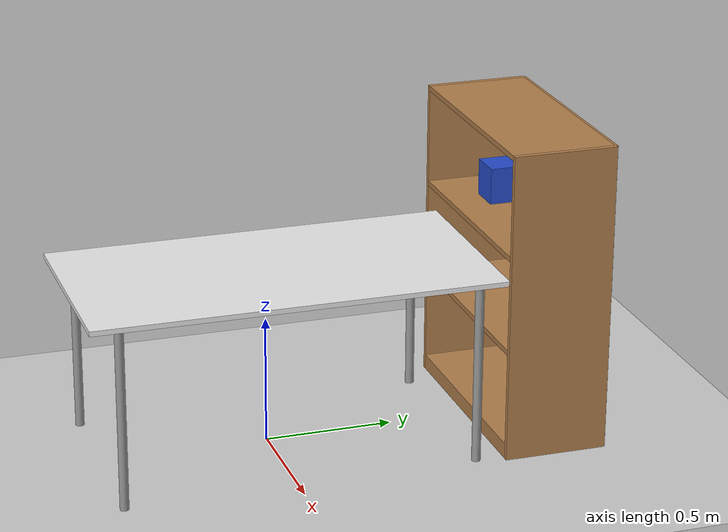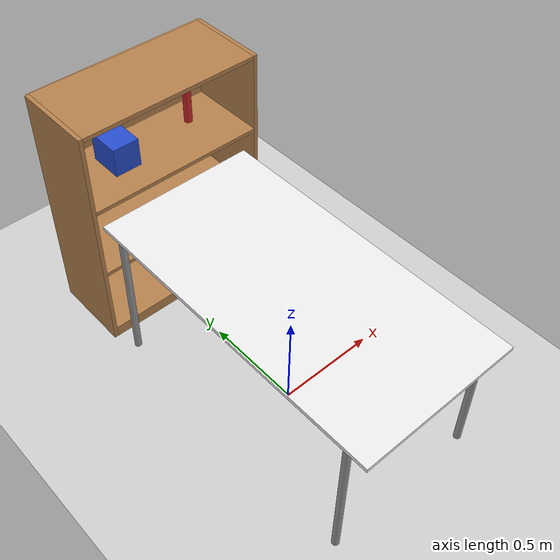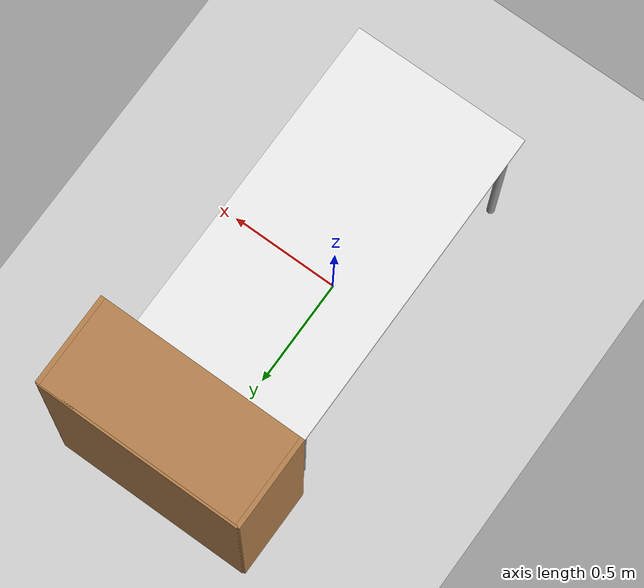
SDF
<sdf version="1.7">
 <world name="default">
  <plugin name="ros_link_attacher_plugin" filename="libgazebo_ros_link_attacher.so"/>
  <light name="sun" type="directional">
   <pose>0 0 10 0 -0 0</pose>
   <diffuse>0.8 0.8 0.8 1</diffuse>
   <specular>0.2 0.2 0.2 1</specular>
   <attenuation>
    <range>1000</range>
    <constant>0.9</constant>
    <linear>0.01</linear>
    <quadratic>0.001</quadratic>
   </attenuation>
   <direction>-0.5 0.1 -0.9</direction>
   <spot><inner_angle>0</inner_angle><outer_angle>0</outer_angle><falloff>0</falloff></spot>
  </light>
  <gravity>0 0 -9.8</gravity>
  <magnetic_field>6e-06 2.3e-05 -4.2e-05</magnetic_field>
  <atmosphere type="adiabatic"/>
  <physics type="ode">
   <max_step_size>0.001</max_step_size>
   <real_time_factor>1</real_time_factor>
   <real_time_update_rate>1000</real_time_update_rate>
  </physics>
  <scene><ambient>0.4 0.4 0.4 1</ambient><background>0.7 0.7 0.7 1</background><shadows>1</shadows></scene>
  <spherical_coordinates>
   <surface_model>EARTH_WGS84</surface_model>
   <latitude_deg>0</latitude_deg>
   <longitude_deg>0</longitude_deg>
   <elevation>0</elevation>
   <heading_deg>0</heading_deg>
  </spherical_coordinates>
  <model name="table2">
   <link name="link2">
    <inertial>
     <inertia><ixx>0</ixx><ixy>0</ixy><ixz>0</ixz><iyy>0</iyy><iyz>0</iyz><izz>0</izz></inertia>
     <mass>0</mass>
    </inertial>
    <pose>0.011874 -0.057526 0 0 -0 0</pose>
    <visual name="back_left_leg">
     <pose>-0.68 0.38 0.35 0 -0 0</pose>
     <geometry><cylinder><radius>0.017374</radius><length>0.7</length></cylinder></geometry>
     <material>
      <script><uri>file://media/materials/scripts/gazebo.material</uri><name>Gazebo/Grey</name></script>
      <shader type="pixel"><normal_map>__default__</normal_map></shader>
      <ambient>0.3 0.3 0.3 1</ambient>
      <diffuse>0.7 0.7 0.7 1</diffuse>
      <specular>0.01 0.01 0.01 1</specular>
      <emissive>0 0 0 1</emissive>
     </material>
    </visual>
    <visual name="visual1">
     <pose>0 0 0.71 0 -0 0</pose>
     <geometry><box><size>1.58 0.8 0.019708</size></box></geometry>
     <material>
      <script><uri>file://media/materials/scripts/gazebo.material</uri><name>Gazebo/White</name></script>
      <shader type="pixel"><normal_map>__default__</normal_map></shader>
      <ambient>0.9 0.9 0.9 1</ambient>
      <diffuse>1 1 1 1</diffuse>
      <specular>0.2 0.2 0.2 1</specular>
      <emissive>0 0 0 1</emissive>
     </material>
    </visual>
    <visual name="front_left_leg">
     <pose>0.68 0.38 0.35 0 -0 0</pose>
     <geometry><cylinder><radius>0.017374</radius><length>0.7</length></cylinder></geometry>
     <material>
      <script><uri>file://media/materials/scripts/gazebo.material</uri><name>Gazebo/Grey</name></script>
      <shader type="pixel"><normal_map>__default__</normal_map></shader>
      <ambient>0.3 0.3 0.3 1</ambient>
      <diffuse>0.7 0.7 0.7 1</diffuse>
      <specular>0.01 0.01 0.01 1</specular>
      <emissive>0 0 0 1</emissive>
     </material>
    </visual>
    <visual name="back_right_leg">
     <pose>-0.68 -0.38 0.35 0 -0 0</pose>
     <geometry><cylinder><radius>0.017374</radius><length>0.7</length></cylinder></geometry>
     <material>
      <script><uri>file://media/materials/scripts/gazebo.material</uri><name>Gazebo/Grey</name></script>
      <shader type="pixel"><normal_map>__default__</normal_map></shader>
      <ambient>0.3 0.3 0.3 1</ambient>
      <diffuse>0.7 0.7 0.7 1</diffuse>
      <specular>0.01 0.01 0.01 1</specular>
      <emissive>0 0 0 1</emissive>
     </material>
    </visual>
    <visual name="front_right_leg">
     <pose>0.68 -0.38 0.35 0 -0 0</pose>
     <geometry><cylinder><radius>0.017374</radius><length>0.7</length></cylinder></geometry>
     <material>
      <script><uri>file://media/materials/scripts/gazebo.material</uri><name>Gazebo/Grey</name></script>
      <shader type="pixel"><normal_map>__default__</normal_map></shader>
      <ambient>0.3 0.3 0.3 1</ambient>
      <diffuse>0.7 0.7 0.7 1</diffuse>
      <specular>0.01 0.01 0.01 1</specular>
      <emissive>0 0 0 1</emissive>
     </material>
    </visual>
    <collision name="front_right_leg">
     <pose>0.68 -0.38 0.35 0 -0 0</pose>
     <geometry><cylinder><radius>0.017374</radius><length>0.7</length></cylinder></geometry>
     <surface>
      <friction>
       <ode><mu>1</mu><mu2>1</mu2><fdir1>0 0 0</fdir1><slip1>0</slip1><slip2>0</slip2></ode>
       <torsional>
        <coefficient>1</coefficient>
        <patch_radius>0</patch_radius>
        <surface_radius>0</surface_radius>
        <use_patch_radius>1</use_patch_radius>
        <ode><slip>0</slip></ode>
       </torsional>
      </friction>
      <bounce><restitution_coefficient>0</restitution_coefficient><threshold>1e+06</threshold></bounce>
      <contact>
       <collide_without_contact>0</collide_without_contact>
       <collide_without_contact_bitmask>1</collide_without_contact_bitmask>
       <collide_bitmask>1</collide_bitmask>
       <ode>
        <soft_cfm>0</soft_cfm>
        <soft_erp>0.2</soft_erp>
        <kp>1e+13</kp>
        <kd>1</kd>
        <max_vel>0.01</max_vel>
        <min_depth>0</min_depth>
       </ode>
       <bullet>
        <split_impulse>1</split_impulse>
        <split_impulse_penetration_threshold>-0.01</split_impulse_penetration_threshold>
        <soft_cfm>0</soft_cfm>
        <soft_erp>0.2</soft_erp>
        <kp>1e+13</kp>
        <kd>1</kd>
       </bullet>
      </contact>
     </surface>
    </collision>
    <collision name="surface">
     <pose>0 0 0.71 0 -0 0</pose>
     <geometry><box><size>1.58 0.8 0.019708</size></box></geometry>
     <surface>
      <friction>
       <ode><mu>0.6</mu><mu2>0.6</mu2><fdir1>0 0 0</fdir1><slip1>0</slip1><slip2>0</slip2></ode>
       <torsional>
        <coefficient>1</coefficient>
        <patch_radius>0</patch_radius>
        <surface_radius>0</surface_radius>
        <use_patch_radius>1</use_patch_radius>
        <ode><slip>0</slip></ode>
       </torsional>
      </friction>
      <bounce><restitution_coefficient>0</restitution_coefficient><threshold>1e+06</threshold></bounce>
      <contact>
       <collide_without_contact>0</collide_without_contact>
       <collide_without_contact_bitmask>1</collide_without_contact_bitmask>
       <collide_bitmask>1</collide_bitmask>
       <ode>
        <soft_cfm>0</soft_cfm>
        <soft_erp>0.2</soft_erp>
        <kp>1e+13</kp>
        <kd>1</kd>
        <max_vel>0.01</max_vel>
        <min_depth>0</min_depth>
       </ode>
       <bullet>
        <split_impulse>1</split_impulse>
        <split_impulse_penetration_threshold>-0.01</split_impulse_penetration_threshold>
        <soft_cfm>0</soft_cfm>
        <soft_erp>0.2</soft_erp>
        <kp>1e+13</kp>
        <kd>1</kd>
       </bullet>
      </contact>
     </surface>
    </collision>
    <collision name="front_left_leg">
     <pose>0.68 0.38 0.35 0 -0 0</pose>
     <geometry><cylinder><radius>0.017374</radius><length>0.7</length></cylinder></geometry>
     <surface>
      <friction>
       <ode><mu>1</mu><mu2>1</mu2><fdir1>0 0 0</fdir1><slip1>0</slip1><slip2>0</slip2></ode>
       <torsional>
        <coefficient>1</coefficient>
        <patch_radius>0</patch_radius>
        <surface_radius>0</surface_radius>
        <use_patch_radius>1</use_patch_radius>
        <ode><slip>0</slip></ode>
       </torsional>
      </friction>
      <bounce><restitution_coefficient>0</restitution_coefficient><threshold>1e+06</threshold></bounce>
      <contact>
       <collide_without_contact>0</collide_without_contact>
       <collide_without_contact_bitmask>1</collide_without_contact_bitmask>
       <collide_bitmask>1</collide_bitmask>
       <ode>
        <soft_cfm>0</soft_cfm>
        <soft_erp>0.2</soft_erp>
        <kp>1e+13</kp>
        <kd>1</kd>
        <max_vel>0.01</max_vel>
        <min_depth>0</min_depth>
       </ode>
       <bullet>
        <split_impulse>1</split_impulse>
        <split_impulse_penetration_threshold>-0.01</split_impulse_penetration_threshold>
        <soft_cfm>0</soft_cfm>
        <soft_erp>0.2</soft_erp>
        <kp>1e+13</kp>
        <kd>1</kd>
       </bullet>
      </contact>
     </surface>
    </collision>
    <collision name="back_left_leg">
     <pose>-0.68 0.38 0.35 0 -0 0</pose>
     <geometry><cylinder><radius>0.017374</radius><length>0.7</length></cylinder></geometry>
     <surface>
      <friction>
       <ode><mu>1</mu><mu2>1</mu2><fdir1>0 0 0</fdir1><slip1>0</slip1><slip2>0</slip2></ode>
       <torsional>
        <coefficient>1</coefficient>
        <patch_radius>0</patch_radius>
        <surface_radius>0</surface_radius>
        <use_patch_radius>1</use_patch_radius>
        <ode><slip>0</slip></ode>
       </torsional>
      </friction>
      <bounce><restitution_coefficient>0</restitution_coefficient><threshold>1e+06</threshold></bounce>
      <contact>
       <collide_without_contact>0</collide_without_contact>
       <collide_without_contact_bitmask>1</collide_without_contact_bitmask>
       <collide_bitmask>1</collide_bitmask>
       <ode>
        <soft_cfm>0</soft_cfm>
        <soft_erp>0.2</soft_erp>
        <kp>1e+13</kp>
        <kd>1</kd>
        <max_vel>0.01</max_vel>
        <min_depth>0</min_depth>
       </ode>
       <bullet>
        <split_impulse>1</split_impulse>
        <split_impulse_penetration_threshold>-0.01</split_impulse_penetration_threshold>
        <soft_cfm>0</soft_cfm>
        <soft_erp>0.2</soft_erp>
        <kp>1e+13</kp>
        <kd>1</kd>
       </bullet>
      </contact>
     </surface>
    </collision>
    <collision name="back_right_leg">
     <pose>-0.68 -0.38 0.35 0 -0 0</pose>
     <geometry><cylinder><radius>0.017374</radius><length>0.7</length></cylinder></geometry>
     <surface>
      <friction>
       <ode><mu>1</mu><mu2>1</mu2><fdir1>0 0 0</fdir1><slip1>0</slip1><slip2>0</slip2></ode>
       <torsional>
        <coefficient>1</coefficient>
        <patch_radius>0</patch_radius>
        <surface_radius>0</surface_radius>
        <use_patch_radius>1</use_patch_radius>
        <ode><slip>0</slip></ode>
       </torsional>
      </friction>
      <bounce><restitution_coefficient>0</restitution_coefficient><threshold>1e+06</threshold></bounce>
      <contact>
       <collide_without_contact>0</collide_without_contact>
       <collide_without_contact_bitmask>1</collide_without_contact_bitmask>
       <collide_bitmask>1</collide_bitmask>
       <ode>
        <soft_cfm>0</soft_cfm>
        <soft_erp>0.2</soft_erp>
        <kp>1e+13</kp>
        <kd>1</kd>
        <max_vel>0.01</max_vel>
        <min_depth>0</min_depth>
       </ode>
       <bullet>
        <split_impulse>1</split_impulse>
        <split_impulse_penetration_threshold>-0.01</split_impulse_penetration_threshold>
        <soft_cfm>0</soft_cfm>
        <soft_erp>0.2</soft_erp>
        <kp>1e+13</kp>
        <kd>1</kd>
       </bullet>
      </contact>
     </surface>
    </collision>
   </link>
   <static>1</static>
   <pose>-0.022089 0.010177 0 0 -0 1.57</pose>
  </model>
  <model name="pick_shelves">
   <model name="bookshelf">
    <static>1</static>
    <link name="link">
     <inertial><mass>1</mass></inertial>
     <collision name="back">
      <pose>0 0.005 0.6 0 -0 0</pose>
      <geometry><box><size>0.9 0.01 1.2</size></box></geometry>
     </collision>
     <visual name="visual1">
      <pose>0 0.005 0.6 0 -0 0</pose>
      <geometry><box><size>0.9 0.01 1.2</size></box></geometry>
      <material>
       <script><uri>file://media/materials/scripts/gazebo.material</uri><name>Gazebo/Wood</name></script>
      </material>
     </visual>
     <collision name="left_side">
      <pose>0.45 -0.195 0.6 0 -0 0</pose>
      <geometry><box><size>0.02 0.4 1.2</size></box></geometry>
     </collision>
     <visual name="visual2">
      <pose>0.45 -0.195 0.6 0 -0 0</pose>
      <geometry><box><size>0.02 0.4 1.2</size></box></geometry>
      <material>
       <script><uri>file://media/materials/scripts/gazebo.material</uri><name>Gazebo/Wood</name></script>
      </material>
     </visual>
     <collision name="right_side">
      <pose>-0.45 -0.195 0.6 0 -0 0</pose>
      <geometry><box><size>0.02 0.4 1.2</size></box></geometry>
     </collision>
     <visual name="visual3">
      <pose>-0.45 -0.195 0.6 0 -0 0</pose>
      <geometry><box><size>0.02 0.4 1.2</size></box></geometry>
      <material>
       <script><uri>file://media/materials/scripts/gazebo.material</uri><name>Gazebo/Wood</name></script>
      </material>
     </visual>
     <collision name="bottom">
      <pose>0 -0.195 0.03 0 -0 0</pose>
      <geometry><box><size>0.88 0.4 0.06</size></box></geometry>
     </collision>
     <visual name="visual4">
      <pose>0 -0.195 0.03 0 -0 0</pose>
      <geometry><box><size>0.88 0.4 0.06</size></box></geometry>
      <material>
       <script><uri>file://media/materials/scripts/gazebo.material</uri><name>Gazebo/Wood</name></script>
      </material>
     </visual>
     <collision name="top">
      <pose>0 -0.195 1.19 0 -0 0</pose>
      <geometry><box><size>0.88 0.4 0.02</size></box></geometry>
     </collision>
     <visual name="visual5">
      <pose>0 -0.195 1.19 0 -0 0</pose>
      <geometry><box><size>0.88 0.4 0.02</size></box></geometry>
      <material>
       <script><uri>file://media/materials/scripts/gazebo.material</uri><name>Gazebo/Wood</name></script>
      </material>
     </visual>
     <collision name="low_shelf">
      <pose>0 -0.195 0.43 0 -0 0</pose>
      <geometry><box><size>0.88 0.4 0.02</size></box></geometry>
     </collision>
     <visual name="visual6">
      <pose>0 -0.195 0.43 0 -0 0</pose>
      <geometry><box><size>0.88 0.4 0.02</size></box></geometry>
      <material>
       <script><uri>file://media/materials/scripts/gazebo.material</uri><name>Gazebo/Wood</name></script>
      </material>
     </visual>
     <collision name="high_shelf">
      <pose>0 -0.195 0.8 0 -0 0</pose>
      <geometry><box><size>0.88 0.4 0.02</size></box></geometry>
     </collision>
     <visual name="visual7">
      <pose>0 -0.195 0.8 0 -0 0</pose>
      <geometry><box><size>0.88 0.4 0.02</size></box></geometry>
      <material>
       <script><uri>file://media/materials/scripts/gazebo.material</uri><name>Gazebo/Wood</name></script>
      </material>
     </visual>
    </link>
    <pose>-0.059311 0.314453 -0.709091 0 -0 0</pose>
   </model>
   <static>0</static>
   <pose>0.102679 0.870177 0.73496 0 -0 0</pose>
  </model>
  <model name="ground_plane">
   <static>1</static>
   <link name="link">
    <collision name="collision">
     <geometry><plane><normal>0 0 1</normal><size>100 100</size></plane></geometry>
     <surface><friction><ode><mu>100</mu><mu2>50</mu2></ode></friction></surface>
    </collision>
    <visual name="visual">
     <cast_shadows>0</cast_shadows>
     <geometry><plane><normal>0 0 1</normal><size>100 100</size></plane></geometry>
     <material>
      <script><uri>file://media/materials/scripts/gazebo.material</uri><name>Gazebo/Grey</name></script>
     </material>
    </visual>
   </link>
   <pose>-2.26503 -1.2302 0 0 -0 0</pose>
  </model>
  <model name="unit_box">
   <pose>-0.131109 1.008687 0.907296 0.000004 0.00 -0.001168</pose>
   <link name="link">
    <inertial>
     <mass>1</mass>
     <inertia>
      <ixx>0.166667</ixx>
      <ixy>0</ixy>
      <ixz>0</ixz>
      <iyy>0.166667</iyy>
      <iyz>0</iyz>
      <izz>0.166667</izz>
     </inertia>
    </inertial>
    <collision name="collision">
     <geometry><box><size>0.132178 0.168159 0.142855</size></box></geometry>
    </collision>
    <visual name="visual">
     <geometry><box><size>0.132178 0.168159 0.142855</size></box></geometry>
     <material>
      <script><name>Gazebo/Blue</name><uri>file://media/materials/scripts/gazebo.material</uri></script>
     </material>
    </visual>
   </link>
  </model>
  <model name="unit_cylinder">
   <pose>0.2565 0.991881 0.996051 -0.000108 0.000046 -0.000258</pose>
   <link name="link">
    <inertial>
     <mass>1</mass>
     <inertia><ixx>0.145833</ixx><ixy>0</ixy><ixz>0</ixz><iyy>0.145833</iyy><iyz>0</iyz><izz>0.125</izz></inertia>
    </inertial>
    <collision name="collision">
     <geometry><cylinder><radius>0.02</radius><length>0.23</length></cylinder></geometry>
    </collision>
    <visual name="visual">
     <geometry><cylinder><radius>0.02</radius><length>0.23</length></cylinder></geometry>
     <material>
      <script><name>Gazebo/Red</name><uri>file://media/materials/scripts/gazebo.material</uri></script>
     </material>
    </visual>
   </link>
  </model>
  <light name="user_spot_light_0" type="spot">
   <pose>-0.03975 0.831681 1 0 -0 0</pose>
   <diffuse>0.5 0.5 0.5 1</diffuse>
   <specular>0.1 0.1 0.1 1</specular>
   <direction>0 0 -1</direction>
   <attenuation>
    <range>20</range>
    <constant>0.5</constant>
    <linear>0.01</linear>
    <quadratic>0.001</quadratic>
   </attenuation>
   <cast_shadows>0</cast_shadows>
   <spot><inner_angle>0.6</inner_angle><outer_angle>1</outer_angle><falloff>1</falloff></spot>
  </light>
 </world>
</sdf>
